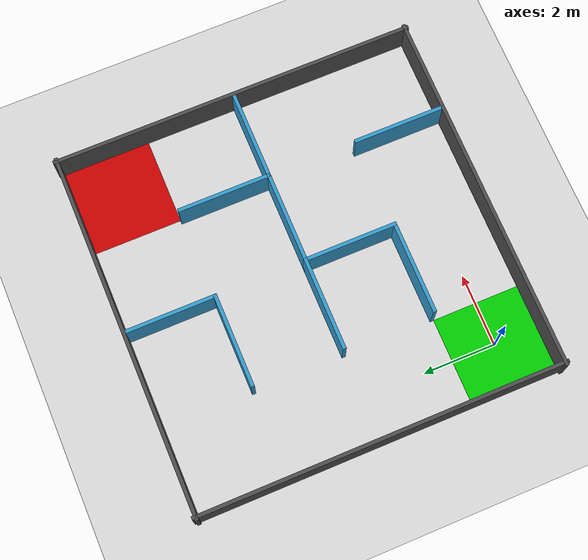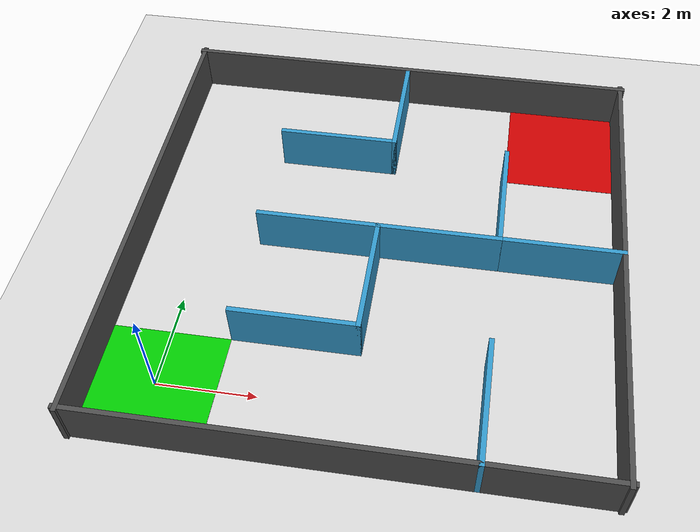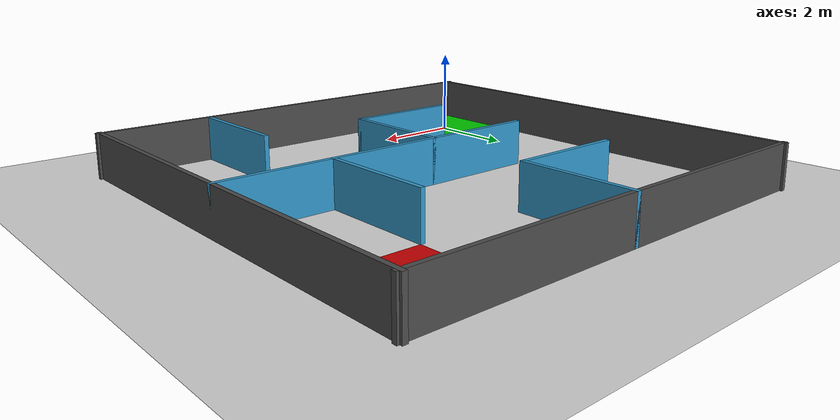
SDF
<?xml version="1.0" ?>
<sdf version="1.9">
  <world name="puzzle">

    <plugin filename="gz-sim-physics-system" name="gz::sim::systems::Physics"/>
    <plugin filename="gz-sim-user-commands-system" name="gz::sim::systems::UserCommands"/>
    <plugin filename="gz-sim-scene-broadcaster-system" name="gz::sim::systems::SceneBroadcaster"/>
    <plugin filename="gz-sim-imu-system" name="gz::sim::systems::Imu"/>

    <plugin filename="gz-sim-sensors-system" name="gz::sim::systems::Sensors">
      <render_engine>ogre2</render_engine>
    </plugin>

    <physics type="ode">
      <max_step_size>0.005</max_step_size>
      <real_time_update_rate>200</real_time_update_rate>
    </physics>

    <light type="directional" name="sun">
      <cast_shadows>true</cast_shadows>
      <pose>0 0 10 0 0 0</pose>
      <diffuse>0.9 0.9 0.9 1</diffuse>
      <specular>0.2 0.2 0.2 1</specular>
      <direction>-0.3 0.3 -0.9</direction>
    </light>

    <model name="ground_plane">
      <static>true</static>
      <link name="link">
        <collision name="collision">
          <geometry><plane><normal>0 0 1</normal><size>20 20</size></plane></geometry>
        </collision>
        <visual name="visual">
          <geometry><plane><normal>0 0 1</normal><size>20 20</size></plane></geometry>
          <material>
            <ambient>0.85 0.85 0.85 1</ambient>
            <diffuse>0.85 0.85 0.85 1</diffuse>
          </material>
        </visual>
      </link>
    </model>

    <model name="start_zone">
      <static>true</static>
      <pose>0 0 0.01 0 0 0</pose>
      <link name="link">
        <visual name="visual">
          <geometry><plane><normal>0 0 1</normal><size>2.4 2.4</size></plane></geometry>
          <material><ambient>0 0.8 0 1</ambient><diffuse>0 0.8 0 1</diffuse></material>
        </visual>
      </link>
    </model>

    <model name="end_zone">
      <static>true</static>
      <pose>7.5 7.5 0.01 0 0 0</pose>
      <link name="link">
        <visual name="visual">
          <geometry><plane><normal>0 0 1</normal><size>2.4 2.4</size></plane></geometry>
          <material><ambient>0.8 0 0 1</ambient><diffuse>0.8 0 0 1</diffuse></material>
        </visual>
      </link>
    </model>

    <model name="outer_wall_west">
      <static>true</static>
      <pose>-1.25 3.75 0.5 0 0 0</pose>
      <link name="link">
        <collision name="col"><geometry><box><size>0.1 10.2 1.0</size></box></geometry></collision>
        <visual name="vis">
          <geometry><box><size>0.1 10.2 1.0</size></box></geometry>
          <material><ambient>0.3 0.3 0.3 1</ambient><diffuse>0.3 0.3 0.3 1</diffuse></material>
        </visual>
      </link>
    </model>

    <model name="outer_wall_east">
      <static>true</static>
      <pose>8.75 3.75 0.5 0 0 0</pose>
      <link name="link">
        <collision name="col"><geometry><box><size>0.1 10.2 1.0</size></box></geometry></collision>
        <visual name="vis">
          <geometry><box><size>0.1 10.2 1.0</size></box></geometry>
          <material><ambient>0.3 0.3 0.3 1</ambient><diffuse>0.3 0.3 0.3 1</diffuse></material>
        </visual>
      </link>
    </model>

    <model name="outer_wall_south">
      <static>true</static>
      <pose>3.75 -1.25 0.5 0 0 0</pose>
      <link name="link">
        <collision name="col"><geometry><box><size>10.2 0.1 1.0</size></box></geometry></collision>
        <visual name="vis">
          <geometry><box><size>10.2 0.1 1.0</size></box></geometry>
          <material><ambient>0.3 0.3 0.3 1</ambient><diffuse>0.3 0.3 0.3 1</diffuse></material>
        </visual>
      </link>
    </model>

    <model name="outer_wall_north">
      <static>true</static>
      <pose>3.75 8.75 0.5 0 0 0</pose>
      <link name="link">
        <collision name="col"><geometry><box><size>10.2 0.1 1.0</size></box></geometry></collision>
        <visual name="vis">
          <geometry><box><size>10.2 0.1 1.0</size></box></geometry>
          <material><ambient>0.3 0.3 0.3 1</ambient><diffuse>0.3 0.3 0.3 1</diffuse></material>
        </visual>
      </link>
    </model>

    <model name="inner_vwall_1">
      <static>true</static>
      <pose>6.25 0.0 0.5 0 0 0</pose>
      <link name="link">
        <collision name="col"><geometry><box><size>0.1 2.6 1.0</size></box></geometry></collision>
        <visual name="vis"><geometry><box><size>0.1 2.6 1.0</size></box></geometry><material><ambient>0.2 0.6 0.8 1</ambient></material></visual>
      </link>
    </model>

    <model name="inner_vwall_2">
      <static>true</static>
      <pose>3.75 2.5 0.5 0 0 0</pose>
      <link name="link">
        <collision name="col"><geometry><box><size>0.1 2.6 1.0</size></box></geometry></collision>
        <visual name="vis"><geometry><box><size>0.1 2.6 1.0</size></box></geometry><material><ambient>0.2 0.6 0.8 1</ambient></material></visual>
      </link>
    </model>

    <model name="inner_vwall_3">
      <static>true</static>
      <pose>6.25 5.0 0.5 0 0 0</pose>
      <link name="link">
        <collision name="col"><geometry><box><size>0.1 2.6 1.0</size></box></geometry></collision>
        <visual name="vis"><geometry><box><size>0.1 2.6 1.0</size></box></geometry><material><ambient>0.2 0.6 0.8 1</ambient></material></visual>
      </link>
    </model>

    <model name="inner_vwall_4">
      <static>true</static>
      <pose>3.75 7.5 0.5 0 0 0</pose>
      <link name="link">
        <collision name="col"><geometry><box><size>0.1 2.6 1.0</size></box></geometry></collision>
        <visual name="vis"><geometry><box><size>0.1 2.6 1.0</size></box></geometry><material><ambient>0.2 0.6 0.8 1</ambient></material></visual>
      </link>
    </model>

    <model name="inner_hwall_1">
      <static>true</static>
      <pose>2.5 1.25 0.5 0 0 0</pose>
      <link name="link">
        <collision name="col"><geometry><box><size>2.6 0.1 1.0</size></box></geometry></collision>
        <visual name="vis"><geometry><box><size>2.6 0.1 1.0</size></box></geometry><material><ambient>0.2 0.6 0.8 1</ambient></material></visual>
      </link>
    </model>

    <model name="inner_hwall_2">
      <static>true</static>
      <pose>2.5 3.75 0.5 0 0 0</pose>
      <link name="link">
        <collision name="col"><geometry><box><size>2.6 0.1 1.0</size></box></geometry></collision>
        <visual name="vis"><geometry><box><size>2.6 0.1 1.0</size></box></geometry><material><ambient>0.2 0.6 0.8 1</ambient></material></visual>
      </link>
    </model>

    <model name="inner_hwall_3">
      <static>true</static>
      <pose>5.0 3.75 0.5 0 0 0</pose>
      <link name="link">
        <collision name="col"><geometry><box><size>2.6 0.1 1.0</size></box></geometry></collision>
        <visual name="vis"><geometry><box><size>2.6 0.1 1.0</size></box></geometry><material><ambient>0.2 0.6 0.8 1</ambient></material></visual>
      </link>
    </model>

    <model name="inner_hwall_4">
      <static>true</static>
      <pose>7.5 3.75 0.5 0 0 0</pose>
      <link name="link">
        <collision name="col"><geometry><box><size>2.6 0.1 1.0</size></box></geometry></collision>
        <visual name="vis"><geometry><box><size>2.6 0.1 1.0</size></box></geometry><material><ambient>0.2 0.6 0.8 1</ambient></material></visual>
      </link>
    </model>

    <model name="inner_hwall_5">
      <static>true</static>
      <pose>2.5 6.25 0.5 0 0 0</pose>
      <link name="link">
        <collision name="col"><geometry><box><size>2.6 0.1 1.0</size></box></geometry></collision>
        <visual name="vis"><geometry><box><size>2.6 0.1 1.0</size></box></geometry><material><ambient>0.2 0.6 0.8 1</ambient></material></visual>
      </link>
    </model>

  </world>
</sdf>
